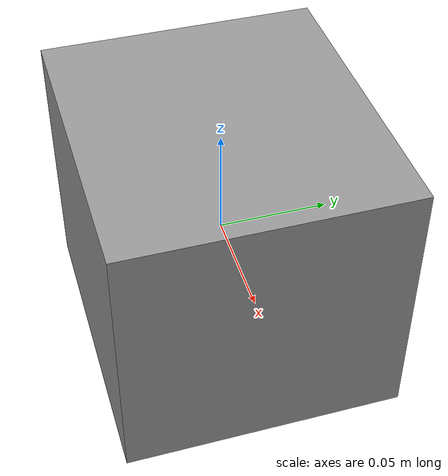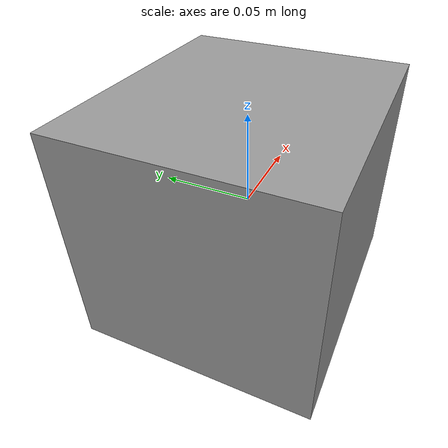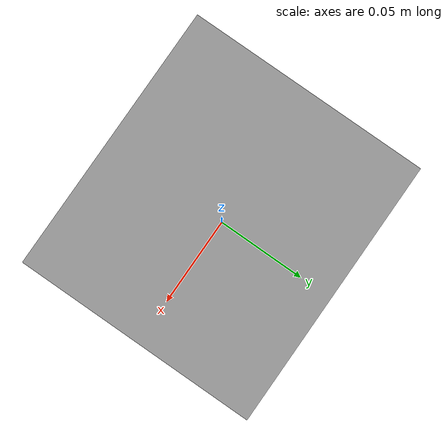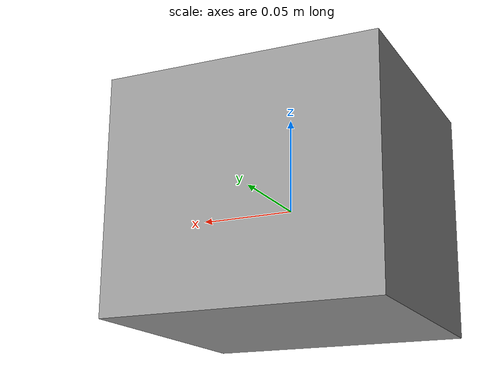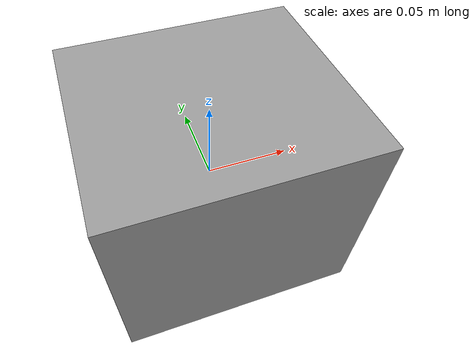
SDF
<?xml version='1.0'?>
<sdf version='1.7'>
  <model name='unit_box'>
    <link name='link'>
      <self_collide>0</self_collide>
      <enable_wind>0</enable_wind>
      <kinematic>0</kinematic>
      <pose>0 0 0 0 -0 0</pose>
      <visual name='visual'>
        <geometry>
          <box>
            <size>0.141303 0.126644 0.121471</size>
          </box>
        </geometry>
        <material>
          <script>
            <name>Gazebo/Grey</name>
            <uri>file://media/materials/scripts/gazebo.material</uri>
          </script>
          <shader type='pixel'/>
        </material>
        <pose>0 0 0 0 -0 0</pose>
        <transparency>0</transparency>
        <cast_shadows>1</cast_shadows>
      </visual>
    </link>
    <static>0</static>
    <allow_auto_disable>1</allow_auto_disable>
  </model>
</sdf>
